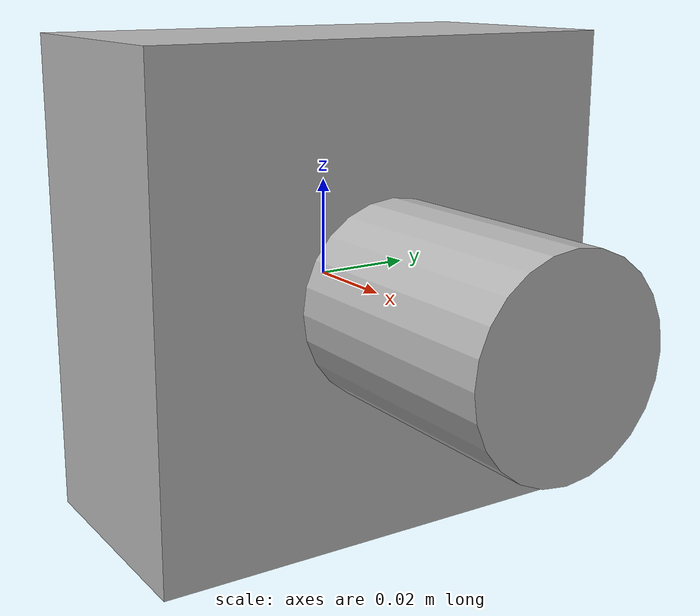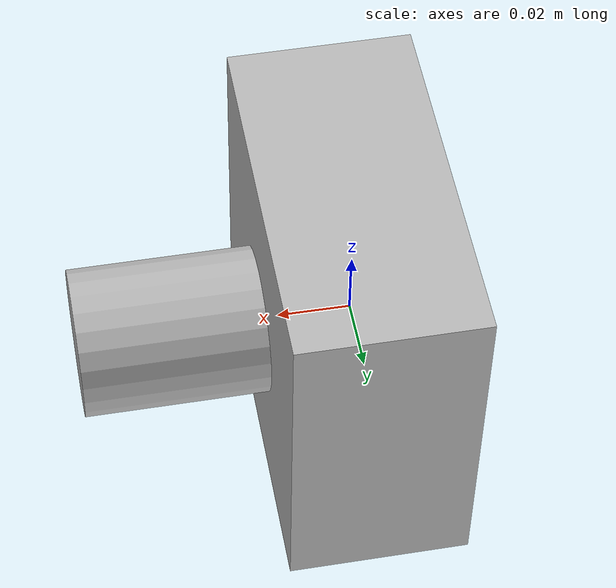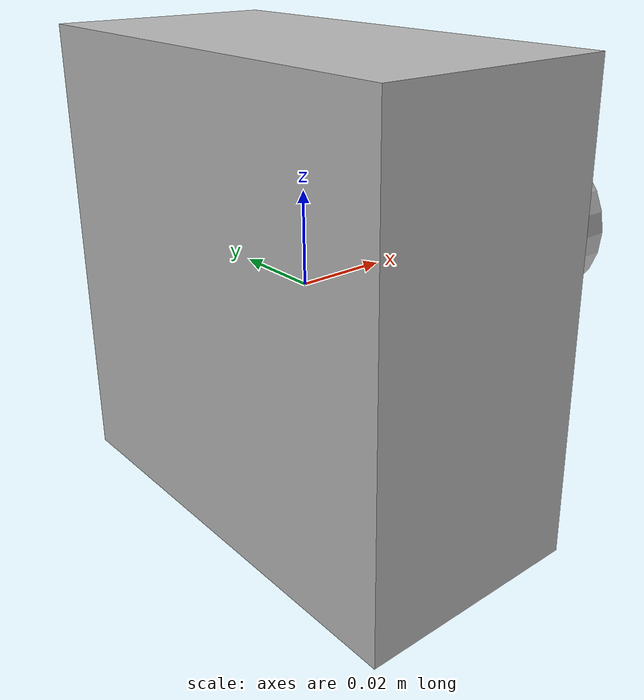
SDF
<?xml version="1.0"?>
<sdf version="1.6">
  <model name="lidar1">
    <pose>0 0 0 0 0 0</pose>
    <link name="link">
      <pose>0 0 0 0 0 0</pose>
      <inertial>
        <mass>0.0</mass>
        <inertia>
          <ixx>0.0</ixx>
          <iyy>0.0</iyy>
          <izz>0.0</izz>
        </inertia>
      </inertial>
      <visual name="visual">
        <geometry>
          <box>
            <size>0.05 0.1 0.1</size>
          </box>
        </geometry>
      </visual>
      <!-- 添加突起 -->
      <visual name="protrusion_visual">
        <pose>0.05 0 0 0 1.57 0</pose>
        <pose>0.1 0 0 1.57 0 0</pose>
        <geometry>
          <cylinder>
            <radius>0.02</radius>
            <length>0.05</length>
          </cylinder>
        </geometry>
      </visual>
      <!-- 突起結束 -->
      <sensor name='gpu_lidar' type='gpu_lidar'>
        <topic>lidar1</topic>
        <pose relative_to='lidar_frame'>0 0 0 0 0 0</pose>
        <update_rate>30</update_rate> <!-- 更新率設置為 30Hz -->
        <ray>
          <scan>
            <horizontal>
              <samples>1</samples>
              <resolution>1</resolution>
              <min_angle>0</min_angle> <!-- 0 degrees -->
              <max_angle>0</max_angle> <!-- 0 degrees -->
            </horizontal>
          </scan>
          <range>
            <min>0.08</min>
            <max>10.0</max>
            <resolution>0.01</resolution>
          </range>
        </ray>
        <always_on>1</always_on>
        <visualize>true</visualize>
      </sensor>
    </link>
  </model>
</sdf>
